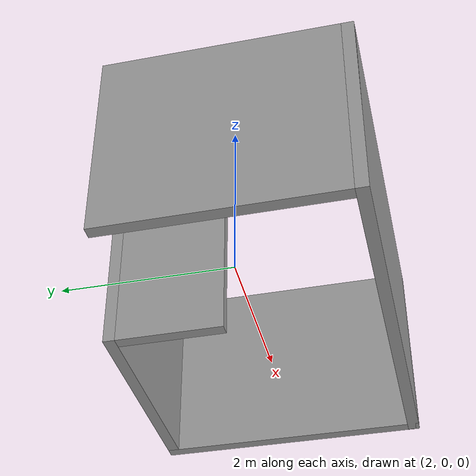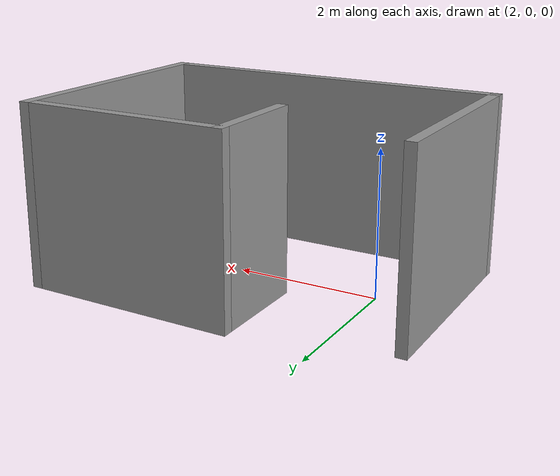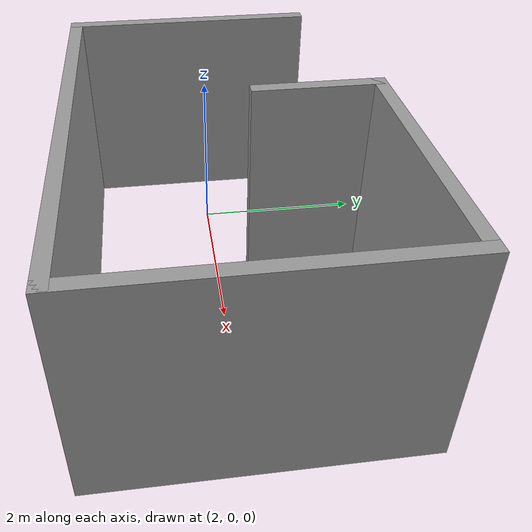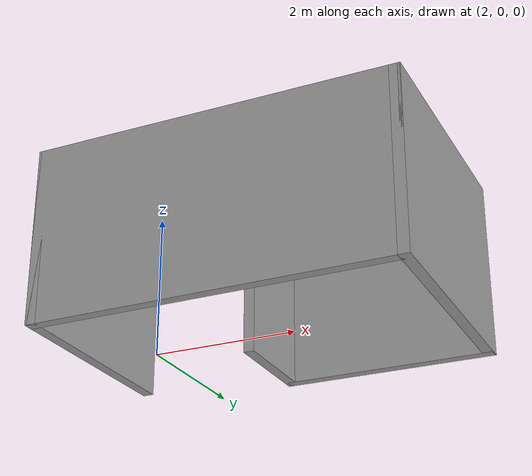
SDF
<?xml version='1.0'?>
<sdf version='1.7'>
  <model name='building_2'>
    <pose>3.0475 0.14 0 0 -0 0</pose>
    <link name='Wall_0'>
      <collision name='Wall_0_Collision'>
        <geometry>
          <box>
            <size>3 0.15 2.5</size>
          </box>
        </geometry>
        <pose>0 0 1.25 0 -0 0</pose>
      </collision>
      <visual name='Wall_0_Visual'>
        <pose>0 0 1.25 0 -0 0</pose>
        <geometry>
          <box>
            <size>3 0.15 2.5</size>
          </box>
        </geometry>
        <material>
          <script>
            <uri>file://media/materials/scripts/gazebo.material</uri>
            <name>Gazebo/Grey</name>
          </script>
          <ambient>1 1 1 1</ambient>
        </material>
        <meta>
          <layer>0</layer>
        </meta>
      </visual>
      <pose>-1.9675 -0.255 0 0 -0 1.5708</pose>
    </link>
    <link name='Wall_12'>
      <collision name='Wall_12_Collision'>
        <geometry>
          <box>
            <size>1.5 0.15 2.5</size>
          </box>
        </geometry>
        <pose>0 0 1.25 0 -0 0</pose>
      </collision>
      <visual name='Wall_12_Visual'>
        <pose>0 0 1.25 0 -0 0</pose>
        <geometry>
          <box>
            <size>1.5 0.15 2.5</size>
          </box>
        </geometry>
        <material>
          <script>
            <uri>file://media/materials/scripts/gazebo.material</uri>
            <name>Gazebo/Grey</name>
          </script>
          <ambient>1 1 1 1</ambient>
        </material>
        <meta>
          <layer>0</layer>
        </meta>
      </visual>
      <pose>0.1125 1.005 0 0 -0 -1.5708</pose>
    </link>
    <link name='Wall_4'>
      <collision name='Wall_4_Collision'>
        <geometry>
          <box>
            <size>5.08 0.15 2.5</size>
          </box>
        </geometry>
        <pose>0 0 1.25 0 -0 0</pose>
      </collision>
      <visual name='Wall_4_Visual'>
        <pose>0 0 1.25 0 -0 0</pose>
        <geometry>
          <box>
            <size>5.08 0.15 2.5</size>
          </box>
        </geometry>
        <material>
          <script>
            <uri>file://media/materials/scripts/gazebo.material</uri>
            <name>Gazebo/Grey</name>
          </script>
          <ambient>1 1 1 1</ambient>
        </material>
        <meta>
          <layer>0</layer>
        </meta>
      </visual>
      <pose>0.4975 -1.68 0 0 -0 0</pose>
    </link>
    <link name='Wall_7'>
      <collision name='Wall_7_Collision'>
        <geometry>
          <box>
            <size>3.51 0.15 2.5</size>
          </box>
        </geometry>
        <pose>0 0 1.25 0 -0 0</pose>
      </collision>
      <visual name='Wall_7_Visual'>
        <pose>0 0 1.25 0 -0 0</pose>
        <geometry>
          <box>
            <size>3.51 0.15 2.5</size>
          </box>
        </geometry>
        <material>
          <script>
            <uri>file://media/materials/scripts/gazebo.material</uri>
            <name>Gazebo/Grey</name>
          </script>
          <ambient>1 1 1 1</ambient>
        </material>
        <meta>
          <layer>0</layer>
        </meta>
      </visual>
      <pose>2.9725 0 0 0 -0 1.5708</pose>
    </link>
    <link name='Wall_8'>
      <collision name='Wall_8_Collision'>
        <geometry>
          <box>
            <size>3 0.15 2.5</size>
          </box>
        </geometry>
        <pose>0 0 1.25 0 -0 0</pose>
      </collision>
      <visual name='Wall_8_Visual'>
        <pose>0 0 1.25 0 -0 0</pose>
        <geometry>
          <box>
            <size>3 0.15 2.5</size>
          </box>
        </geometry>
        <material>
          <script>
            <uri>file://media/materials/scripts/gazebo.material</uri>
            <name>Gazebo/Grey</name>
          </script>
          <ambient>1 1 1 1</ambient>
        </material>
        <meta>
          <layer>0</layer>
        </meta>
      </visual>
      <pose>1.5375 1.68 0 0 -0 3.14159</pose>
    </link>
    <static>1</static>
  </model>
</sdf>
